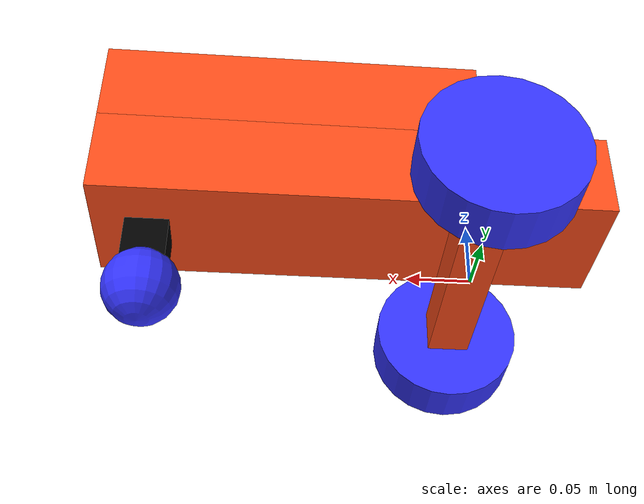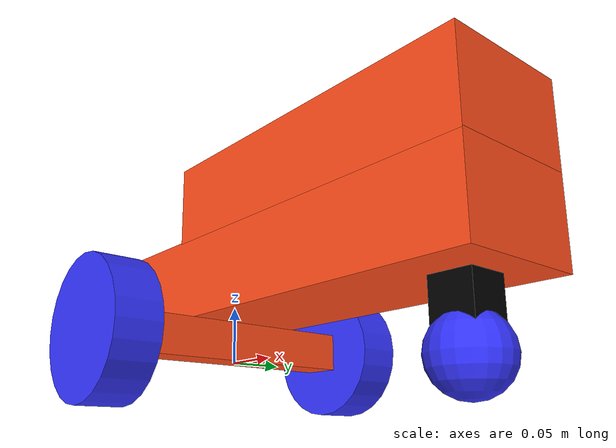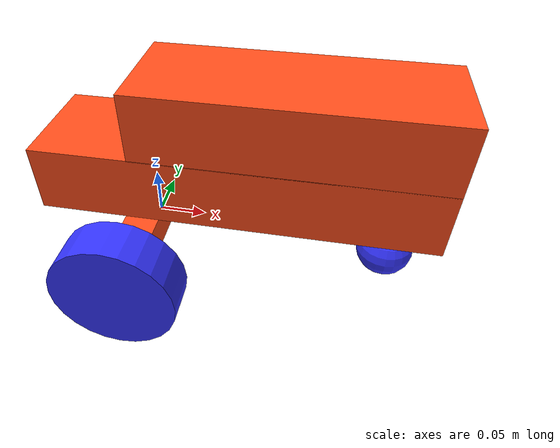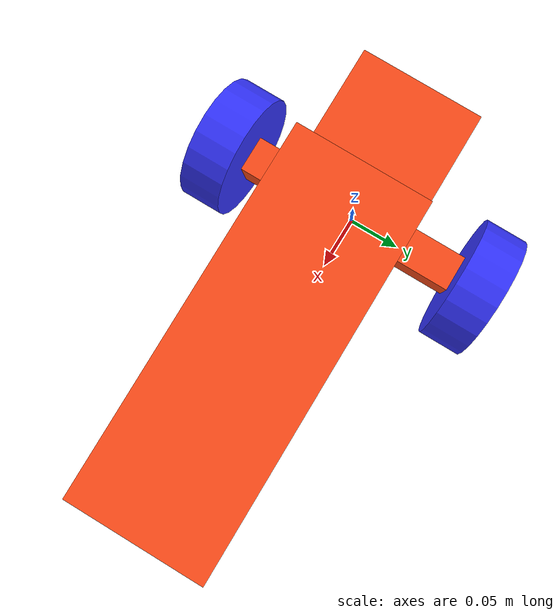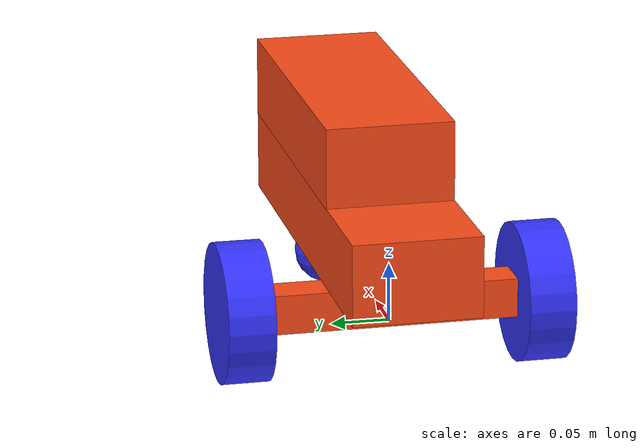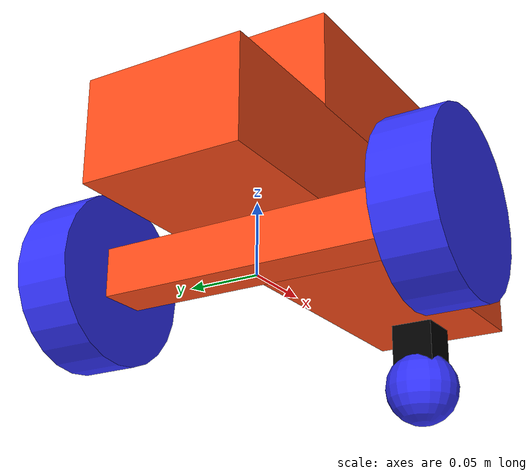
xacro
<?xml version="1.0"?>
<robot xmlns:xacro="http://www.ros.org/wiki/xacro">

    <xacro:include filename="inertial_macros.xacro"/>

            <!-- Farben -->

    <material name="white">
        <color rgba="1 1 1 1"/>
    </material>

    <material name="black">
        <color rgba="0 0 0 1"/>
    </material>

    <material name="blue">
        <color rgba="0.2 0.2 1 1"/>
    </material>

    <material name="yellow">
        <color rgba="1 1 0 1"/>
    </material>

    <material name="orange">
        <color rgba="1 0.3 0.1 1"/>
    </material>

    <material name="green">
        <color rgba="0.0 1.0 0.0 1.0"/>
    </material>

    <material name="red">
        <color rgba="1.0 0.0 0.0 1.0"/>
    </material>

    <!-- BASE_FOOT_PRINT-->

    <link name="base_footprint">
    </link>

    <!-- FOOTPRINT JOINT -->
    <joint name="basefootprint_joint" type="fixed">
        <parent link="base_link"/>
        <child link="base_footprint"/>
        <origin xyz="0.0 0.0 0.0"/>
    </joint>

    <!-- BASE LINK -->

    <link name="base_link">

    </link>
    <!-- CHASSIS LINK -->
    <joint name="cassis_joint" type="fixed">
        <parent link="base_link"/>
        <child link="chassis"/>
        <origin xyz="-0.017 0.0 0.0"/>
    </joint>

    <link name="chassis">
        <visual>
            <origin xyz="0.017 0.0 0.017"/>
            <geometry>
                <box size="0.034 0.25 0.034"/>
            </geometry>
            <material name="orange"/>
        </visual>
        <collision>
            <origin xyz="0.017 0.0 0.017"/>
            <geometry>
                <box size="0.034 0.25 0.034"/>
            </geometry>
        </collision>
        <xacro:inertial_box mass="1.5" x="0.034" y="0.25" z="0.034">
            <origin xyz="0.0 0.0 0.0" rpy="0.0 0.0 0.0"/>
        </xacro:inertial_box>
    </link>

    <gazebo reference="chassis">
        <material>Gazebo/Black</material>
    </gazebo>

        <!-- LEFT WHEEL LINK -->

    <joint name="left_wheel_joint" type="continuous">
        <origin xyz="0 -0.128 0.017" rpy="${pi/2} 0 0"/>
        <parent link="base_link"/>
        <child link="left_wheel"/>
        <axis xyz="0.0 0.0 1.0"/>
        <limit lower="0.0" upper="0.0" effort="0.0" velocity="0.0"/>
    </joint>

    <link name="left_wheel">
        <visual>
            <geometry>
                <cylinder radius="0.06" length="0.04"/>
            </geometry>
            <material name="blue"/>
        </visual>
        <collision>
            <geometry>
                <sphere radius="0.06"/>
            </geometry>
        </collision>
        <xacro:inertial_sphere mass="0.3" radius="0.06">
            <origin xyz="0.0 0.0 0.0" rpy="0.0 0.0 0.0"/>
        </xacro:inertial_sphere>
    </link>

    <gazebo reference="left_wheel">
        <material>Gazebo/Blue</material>
        <mu1 value="100000000000000.0" />
        <mu2 value="100000000000000.0" />
        <kp value="1000000000000.0" />
        <kd value="10"/>
        <minDepth>0.001</minDepth>
        <maxVel>0.1</maxVel>
        <fdir1>1 0 0</fdir1>
    </gazebo>

    <!-- RIGHT WHEEL  LINK -->

    <joint name="right_wheel_joint" type="continuous">
        <origin xyz="0 0.128 0.017" rpy="-${pi/2} 0 0"/>
        <parent link="base_link"/>
        <child link="right_wheel"/>
        <axis xyz="0.0 0.0 -1.0"/>
        <limit lower="0.0" upper="0.0" effort="0.0" velocity="0.0"/>
    </joint>

    <link name="right_wheel">
        <visual>
            <geometry>
                <cylinder radius="0.06" length="0.04"/>
            </geometry>
            <material name="blue"/>
        </visual>
        <collision>
            <geometry>
                <sphere radius="0.06"/>
            </geometry>
        </collision>
        <xacro:inertial_sphere mass="0.3" radius="0.06">
            <origin xyz="0.0 0.0 0.0" rpy="0.0 0.0 0.0"/>
        </xacro:inertial_sphere>
    </link>

    <gazebo reference="right_wheel">
        <material>Gazebo/Blue</material>
        <mu1 value="100000000000000.0" />
        <mu2 value="100000000000000.0" />
        <kp value="1000000000000.0" />
        <kd value="10"/>
        <minDepth>0.001</minDepth>
        <maxVel>0.1</maxVel>
        <fdir1>1 0 0</fdir1>
    </gazebo>

    <!-- Caster Wheel Holder and Caster Wheel -->

    <joint name="caster_wheel_holder_joint" type="fixed">
        <parent link="base_link"/>
        <child link="caster_wheel_holder"/>
        <origin xyz="0.25 0.0 0.0"/>
    </joint>

    <link name="caster_wheel_holder">
        <visual>
            <origin xyz="0.0 0.0 0.017"/>
            <geometry>
                <box size="0.034 0.034 0.034"/>
            </geometry>
            <material name="black"/>
        </visual>
        <collision>
            <origin xyz="0.0 0.0 0.017"/>
            <geometry>
                <box size="0.034 0.034 0.034"/>
            </geometry>
        </collision>
        <xacro:inertial_box mass="1.5" x="0.034" y="0.034" z="0.034">
            <origin xyz="0.0 0.0 0.0" rpy="0.0 0.0 0.0"/>
        </xacro:inertial_box>
    </link>
    <gazebo reference="caster_wheel_holder">
        <material>Gazebo/Black</material>
    </gazebo>

    <!-- caster Wheel-->

    <joint name="caster_wheel_joint" type="fixed">
        <parent link="caster_wheel_holder"/>
        <child link="caster_wheel_link"/>
        <origin xyz="0.0 0.0 -0.017"/>
    </joint>

    <link name="caster_wheel_link">
        <visual>
            <geometry>
                <sphere radius="0.03"/>
            </geometry>
            <material name="blue">
            </material>
        </visual>
        <collision>
            <geometry>
                <sphere radius="0.03"/>
            </geometry>
        </collision>
        <xacro:inertial_sphere mass="0.15" radius="0.03">
            <origin xyz="0.0 0.0 0.0" rpy="0.0 0.0 0.0"/>
        </xacro:inertial_sphere>
    </link>
    <gazebo reference="caster_wheel_link">
        <material>Gazebo/Blue</material>
        <mu1 value="0.001" />
        <mu2 value="0.001" />
        <kp value="10000000.0" />
        <kd value="100"/>
        <minDepth>0.001</minDepth>
        <maxVel>0.1</maxVel>
        <fdir1>1 0 0</fdir1>
    </gazebo>

    <!-- BODY PARTS-->

    <joint name="body_joint" type="fixed">
        <parent link="chassis"/>
        <child link="body"/>
        <origin xyz="0.110 0.0 0.069"/>
    </joint>

    <link name="body">
        <visual>
            <origin xyz="0.0 0.0 0.0"/>
            <geometry>
                <box size="0.4 0.11 0.07"/>
            </geometry>
            <material name="orange"/>
        </visual>
        <collision>
            <origin xyz="0.093 0.0 0.075"/>
            <geometry>
                <box size="0.4 0.11 0.07"/>
            </geometry>
        </collision>
        <xacro:inertial_box mass="0.5" x="0.4" y="0.11" z="0.07">
            <origin xyz="0.0 0.0 0.0" rpy="0.0 0.0 0.0"/>
        </xacro:inertial_box>
    </link>

    <gazebo reference="body">
        <material>Gazebo/Orange</material>
    </gazebo>

    <!-- BodyTop-->

    <joint name="body_top_joint" type="fixed">
        <parent link="chassis"/>
        <child link="body_top"/>
        <origin xyz="0.16 0.0 0.138"/>
    </joint>

    <link name="body_top">
        <visual>
            <origin xyz="0.0 0.0 0.0"/>
            <geometry>
                <box size="0.3 0.11 0.07"/>
            </geometry>
            <material name="orange"/>
        </visual>
        <collision>
            <origin xyz="0.093 0.0 0.075"/>
            <geometry>
                <box size="0.4 0.11 0.07"/>
            </geometry>
        </collision>
        <xacro:inertial_box mass="0.5" x="0.4" y="0.11" z="0.07">
            <origin xyz="0.0 0.0 0.0" rpy="0.0 0.0 0.0"/>
        </xacro:inertial_box>
    </link>

    <gazebo reference="body_top">
        <material>Gazebo/Orange</material>
    </gazebo>

</robot>
